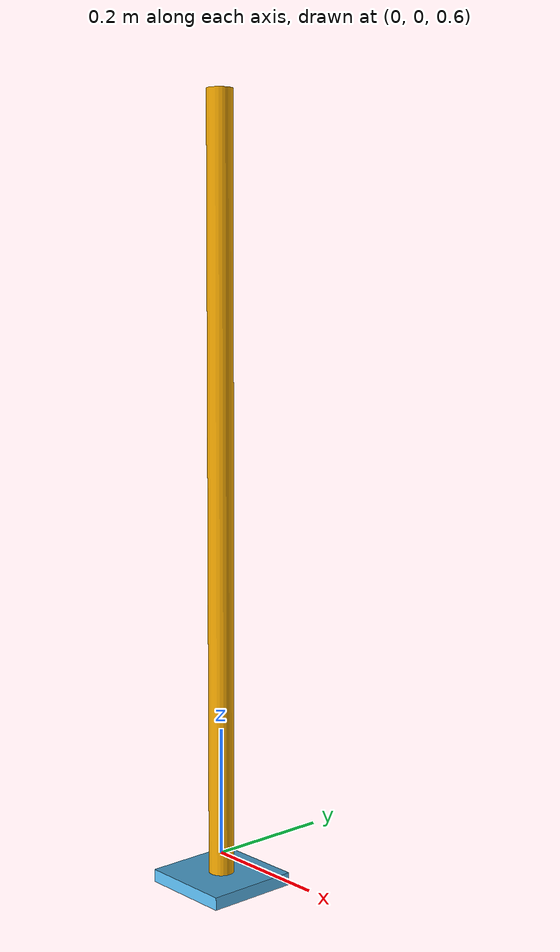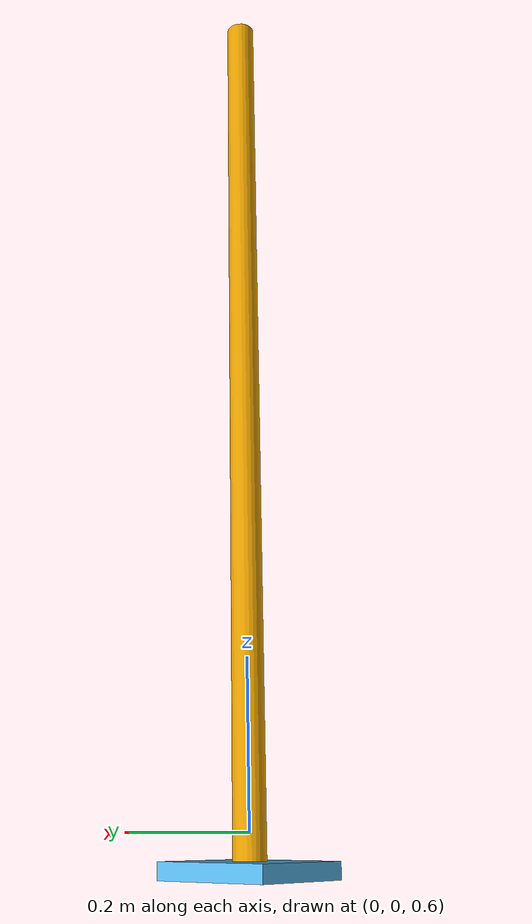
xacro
<?xml version="1.0"?>
<robot name="table"
       xmlns:xi="http://www.w3.org/2001/XInclude"
       xmlns:gazebo="http://playerstage.sourceforge.net/gazebo/xmlschema/#gz"
       xmlns:model="http://playerstage.sourceforge.net/gazebo/xmlschema/#model"
       xmlns:sensor="http://playerstage.sourceforge.net/gazebo/xmlschema/#sensor"
       xmlns:body="http://playerstage.sourceforge.net/gazebo/xmlschema/#body"
       xmlns:geom="http://playerstage.sourceforge.net/gazebo/xmlschema/#geom"
       xmlns:joint="http://playerstage.sourceforge.net/gazebo/xmlschema/#joint"
       xmlns:interface="http://playerstage.sourceforge.net/gazebo/xmlschema/#interface"
       xmlns:rendering="http://playerstage.sourceforge.net/gazebo/xmlschema/#rendering"
       xmlns:renderable="http://playerstage.sourceforge.net/gazebo/xmlschema/#renderable"
       xmlns:controller="http://playerstage.sourceforge.net/gazebo/xmlschema/#controller"
       xmlns:physics="http://playerstage.sourceforge.net/gazebo/xmlschema/#physics">

  <xacro:property name="table_z" value="0.0" />
  <xacro:property name="table_height" value="0.55" />

  <xacro:property name="object_1_x" value="0.0" />
  <xacro:property name="object_1_y" value="0.0" />

  <xacro:property name="object_1_height"      value="1.2" />
  <xacro:property name="object_1_radius"      value="0.02" />
  <xacro:property name="object_1_base_height" value="0.02" />
  <xacro:property name="object_1_base_width"  value="0.15" />
  <xacro:property name="object_1_mass"        value="0.2" />
  <xacro:property name="object_1_mu"          value="500.0" />
  <joint name="object_1_joint" type="fixed" >
    <parent link="object_1_base_link" />
    <origin xyz="${object_1_x} ${object_1_y} ${table_z+table_height+object_1_base_height}" rpy="0 0 0" />
    <child link="object_1_link" />
  </joint>
  <link name="object_1_link">
    <inertial>
      <mass value="${object_1_mass/2.0}" />
      <origin xyz="0 0 ${object_1_height/2}" />
      <inertia ixx="${object_1_mass/20.0}" ixy="0"  ixz="0"
               iyy="${object_1_mass/20.0}" iyz="0"
               izz="${object_1_mass/200.}" />
    </inertial>
    <visual>
      <origin xyz="0.0 0.0 ${object_1_height/2}" rpy="0 0 0" />
      <geometry>
        <cylinder radius="${object_1_radius}" length="${object_1_height}" />
      </geometry>
    </visual>
    <collision>
      <origin xyz="0.0 0.0 ${object_1_height/2}" rpy="0.0 0.0 0.0" />
      <geometry>
        <cylinder radius="${object_1_radius}" length="${object_1_height}" />
      </geometry>
    </collision>
  </link>
  <gazebo reference="object_1_link">
    <material>Gazebo/BumpyMetal</material>
    <mu1>${object_1_mu}</mu1>
    <mu2>${object_1_mu}</mu2>
    <kp>100000000.0</kp>
    <kd>1.0</kd>
    <selfCollide>true</selfCollide>
    <turnGravityOff>false</turnGravityOff>
    <dampingFactor>0.001</dampingFactor>
  </gazebo>

  <link name="object_1_base_link">
    <inertial>
      <mass value="${object_1_mass/2.0}" />
      <origin xyz="${object_1_x} ${object_1_y} ${table_z+table_height+object_1_base_height/2}" rpy="0 0 0" />
      <inertia ixx="${object_1_mass/20.0}" ixy="0"  ixz="0"
               iyy="${object_1_mass/20.0}" iyz="0"
               izz="${object_1_mass/200.}" />
    </inertial>
    <visual>
      <origin xyz="${object_1_x} ${object_1_y} ${table_z+table_height+object_1_base_height/2}" rpy="0 0 0" />
      <geometry>
        <box size="${object_1_base_width} ${object_1_base_width} ${object_1_base_height}" />
      </geometry>
    </visual>
    <collision>
      <origin xyz="${object_1_x} ${object_1_y} ${table_z+table_height+object_1_base_height/2}" rpy="0 0 0" />
      <geometry>
        <box size="${object_1_base_width} ${object_1_base_width} ${object_1_base_height}" />
      </geometry>
    </collision>
  </link>
  <gazebo reference="object_1_base_link">
    <material>Gazebo/RustyBarrel</material>
    <mu1>0.1</mu1>
    <mu2>0.1</mu2>
    <kp>100000000.0</kp>
    <kd>1.0</kd>
    <selfCollide>true</selfCollide>
    <turnGravityOff>false</turnGravityOff>
    <dampingFactor>0.001</dampingFactor>
  </gazebo>
  <gazebo>
    <canonicalBody>object_1_base_link</canonicalBody>
  </gazebo>

</robot>
